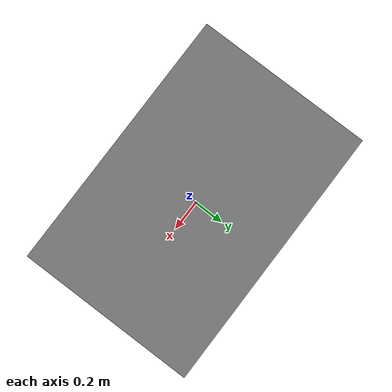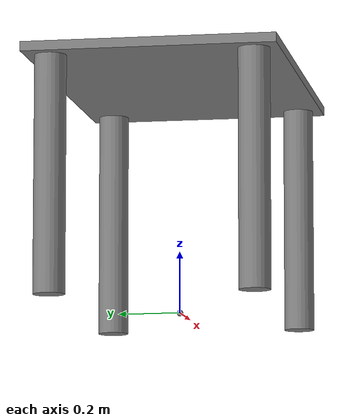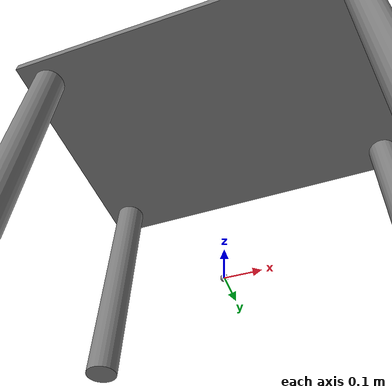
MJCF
<mujoco model="table">
<!-- Copyright (c) 2025 Boston Dynamics AI Institute LLC. All rights reserved. -->
  <worldbody>
    <body name="table" pos="0 0 0">
      <joint name="table_joint" type="free" limited="false"/>
      <inertial pos="0 0 0" mass="20" diaginertia="2.5 2.5 3.0"/>

      <!-- Tabletop: 1.2m x 0.8m x 0.03m (typical dining table dimensions) -->
      <geom name="tabletop" type="box" size="0.6 0.4 0.015" pos="0 0 0.765"/>

      <!-- Four legs: positioned at corners, cylinder radius 0.05m, height 0.75m -->
      <geom name="leg1" type="cylinder" size="0.05 0.375" pos="0.52 0.32 0.375"/>
      <geom name="leg2" type="cylinder" size="0.05 0.375" pos="-0.52 0.32 0.375"/>
      <geom name="leg3" type="cylinder" size="0.05 0.375" pos="0.52 -0.32 0.375"/>
      <geom name="leg4" type="cylinder" size="0.05 0.375" pos="-0.52 -0.32 0.375"/>

      <site name="site_object" pos="0 0 0" size="0.01"/>
    </body>
  </worldbody>
</mujoco>
